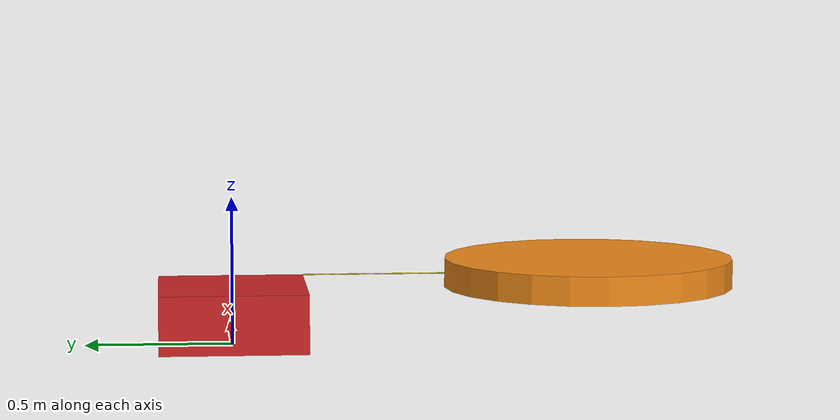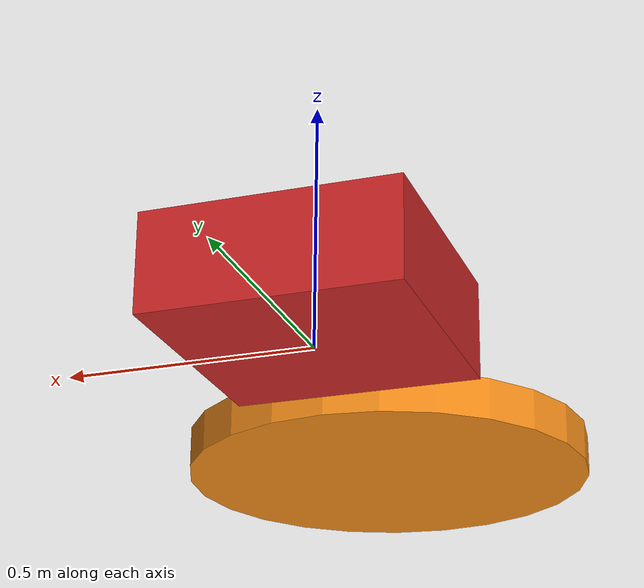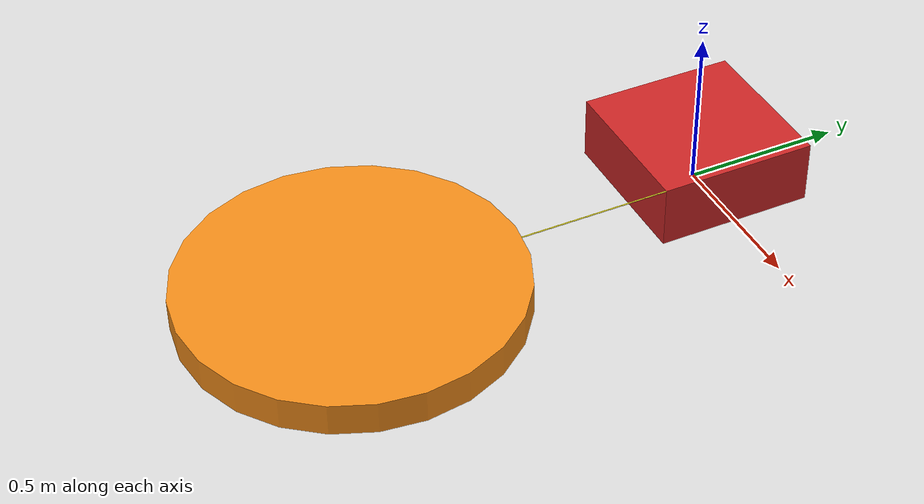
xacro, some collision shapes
<?xml version="1.0"?>
<robot name="dega_tethered"
    xmlns:xacro="http://ros.org/wiki/xacro">
    <!-- Properties -->
    <xacro:arg name="vehicle_name" default="dega_base"/>
    <xacro:arg name="color" default="White"/>

    <xacro:property name="namespace" value="$(arg vehicle_name)"/>
    <xacro:property name="use_mesh_file" value="true"/>
    <xacro:property name="mesh_file" value="model://qrotor_gazebo/meshes/dega.dae"/>

    <!-- load dimensions -->
    <xacro:property name="load_mass" value="2"/>
    <xacro:property name="load_length" value="0.5"/>
    <xacro:property name="load_width" value="0.5"/>
    <xacro:property name="load_height" value="0.2"/>
    <xacro:property name="cable_length" value="1"/>
    <xacro:property name="cable_radius" value="0.002"/>

    <xacro:property name="PI" value="3.1415926535897931"/>
    <xacro:property name="mass" value="0.9"/>
    <xacro:property name="body_width" value="0.505"/>
    <xacro:property name="body_height" value="0.1"/>
    <xacro:property name="body_inertia">
        <inertia ixx="0.0049" ixy="0.0000055" ixz="0.0000054" iyy="0.0053" iyz="0.000021" izz="0.0098"/>
    </xacro:property>
    <xacro:property name="color" value="$(arg color)"/>
    <!-- Size of square 'camera' box -->
    <xacro:property name="camera_length" value="0.01"/>
    <xacro:property name="camera_width" value="0.05"/>
    <xacro:property name="camera_height" value="0.015"/>
    <!-- Space btw top of beam and the each joint -->
    <xacro:property name="camera_offset" value="0.035"/>

    <!-- Qrotorflight SIL Plugin -->
    <xacro:include filename="$(find qrotor_gazebo)/xacro/qrotor_gazebo.xacro"/>

    <!-- Macro to add a spherical_joint_plugin. -->
    <xacro:macro name="spherical_joint_plugin" params="parent_link child_link">
        <gazebo>
            <plugin filename="libspherical_joint_plugin.so" name="spherical_joint_plugin">
                <parent_link>${parent_link}</parent_link>
                <child_link>${child_link}</child_link>
            </plugin>
        </gazebo>
    </xacro:macro>
    <xacro:macro name="spherical_joint" params="parent_link child_link xyz rpy">
        <joint name="dummy_${parent_link}_${child_link}_joint" type="floating">
            <origin xyz="${xyz}" rpy="${rpy}"/>
            <parent link="${parent_link}"/>
            <child link="${child_link}"/>
        </joint>
        <xacro:spherical_joint_plugin parent_link="${parent_link}" child_link="${child_link}"/>
    </xacro:macro>

    <!-- Used for fixing robot to Gazebo 'base_link' -->
    <link name="world"/>

    <joint name="payload_fixed" type="fixed">
        <parent link="world"/>
        <child link="payload_link"/>
    </joint>

    <link name="payload_link">
        <collision>
            <origin xyz="0 0 ${load_height/2}" rpy="0 0 0"/>
            <geometry>
                <box size="${load_length} ${load_width} ${load_height}"/>
            </geometry>
            <surface>
                <bounce restitution_coefficient="0"/>
            </surface>
        </collision>
        <visual>
            <origin xyz="0 0 ${load_height/2}" rpy="0 0 ${-PI/2}"/>
            <geometry>
                <mesh filename="file:///$(find qrotor_description)/meshes/arcuo.dae" scale="${load_length*0.5} ${load_width*0.5} ${load_height*0.5}"/>
            </geometry>
            <material name="red"/>
        </visual>
        <inertial>
            <origin xyz="0 0 ${load_height/2}" rpy="0 0 0"/>
            <mass value="${load_mass}"/>
            <inertia ixx="0.1" ixy="0.0" ixz="0.0" iyy="0.1" iyz="0.0" izz="0.4"/>
        </inertial>
    </link>
    <xacro:rigidbody_plugin namespace="payload" parent_link="payload_link"/>

    <link name="cable_link">
        <visual>
            <origin xyz="0 0 ${cable_length/2}" rpy="0 0 0"/>
            <geometry>
                <cylinder length="${cable_length}" radius="${cable_radius}"/>
            </geometry>
        </visual>
        <inertial>
            <origin xyz="0 0 ${cable_length/2}" rpy="0 0 0"/>
            <mass value="0.0001"/>
            <inertia ixx="0.0001" ixy="0.0" ixz="0.0" iyy="0.0001" iyz="0.0" izz="0.0004"/>
        </inertial>
    </link>
    <gazebo reference="cable_link">
        <material>Gazebo/Yellow</material>
        <self_collide>0</self_collide>
        <mu1>1</mu1>
        <mu2>1</mu2>
        <maxVel>0.0</maxVel>
        <minDepth>0.001</minDepth>
    </gazebo>
    <xacro:spherical_joint parent_link="payload_link" child_link="cable_link" xyz="${load_length/2} -${load_width/2} ${load_height}" rpy="${PI/2} 0 0"/>

    <!-- gazebo robot description -->
    <link name="${namespace}/base_link">
        <inertial>
            <mass value="${mass}"/>
            <!-- [kg] -->
            <origin xyz="0 0 0"/>
            <xacro:insert_block name="body_inertia"/>
        </inertial>
        <visual>
            <origin xyz="0 0 0" rpy="0 0 ${-PI/2}"/>
            <geometry>
                <mesh filename="package://qrotor_description/meshes/dega.dae" scale="0.001 0.001 0.001"/>
            </geometry>
            <material name="orange"/>
        </visual>
        <collision>
            <origin xyz="0 0 0" rpy="0 0 0"/>
            <geometry>
                <cylinder length="${body_height}" radius="${body_width}"/>
            </geometry>
        </collision>
    </link>
    <gazebo reference="${namespace}/base_link">
        <material>Gazebo/${color}</material>
    </gazebo>
    <xacro:generic_multirotor namespace="${namespace}" parent_link="${namespace}/base_link"/>

    <!-- Camera joint (fixed to the drone-frame) -->
    <joint name="${namespace}/camera_joint" type="fixed">
        <origin xyz="${-camera_length} 0 ${-camera_offset}" rpy="0 ${PI/4} ${PI/2}"/>
        <parent link="${namespace}/base_link"/>
        <child link="${namespace}/camera_link"/>
    </joint>

    <joint name="${namespace}/camera_optical_joint" type="fixed">
        <origin xyz="0 0 0" rpy="${-pi/2} 0 ${-pi/2}"/>
        <parent link="${namespace}/camera_link"/>
        <child link="${namespace}/camera_link_optical"/>
    </joint>

    <link name="${namespace}/camera_link_optical">
        <inertial>
            <mass value="1e-5"/>
            <origin xyz="0 0 0" rpy="0 0 0"/>
            <inertia ixx="1e-6" ixy="0" ixz="0" iyy="1e-6" iyz="0" izz="1e-6"/>
        </inertial>
    </link>

    <!-- Camera -->
    <link name="${namespace}/camera_link">
        <collision>
            <origin xyz="0 0 0" rpy="0 0 0"/>
            <geometry>
                <box size="${camera_length} ${camera_width} ${camera_height}"/>
            </geometry>
        </collision>
        <visual>
            <origin xyz="0 0 0" rpy="0 0 0"/>
            <geometry>
                <box size="${camera_length} ${camera_width} ${camera_height}"/>
            </geometry>
            <material name="red"/>
        </visual>
        <inertial>
            <mass value="1e-5"/>
            <origin xyz="0 0 0" rpy="0 0 0"/>
            <inertia ixx="1e-6" ixy="0" ixz="0" iyy="1e-6" iyz="0" izz="1e-6"/>
        </inertial>
    </link>
    <gazebo reference="${namespace}/camera_link">
        <material>Gazebo/Red</material>
        <sensor type="camera" name="color_camera">
            <update_rate>30.0</update_rate>
            <camera name="head">
                <horizontal_fov>1.3962634</horizontal_fov>
                <image>
                    <width>800</width>
                    <height>800</height>
                    <format>R8G8B8</format>
                </image>
                <clip>
                    <near>0.02</near>
                    <far>300</far>
                </clip>
                <noise>
                    <type>gaussian</type>
                    <!-- Noise is sampled independently per pixel on each frame.
               That pixel's noise value is added to each of its color
               channels, which at that point lie in the range [0,1]. -->
                    <mean>0.0</mean>
                    <stddev>0.007</stddev>
                </noise>
            </camera>
            <plugin name="camera_controller" filename="libgazebo_ros_camera.so">
                <alwaysOn>true</alwaysOn>
                <updateRate>0.0</updateRate>
                <cameraName>camera</cameraName>
                <imageTopicName>image_raw</imageTopicName>
                <cameraInfoTopicName>camera_info</cameraInfoTopicName>
                <frameName>camera_link</frameName>
                <hackBaseline>0.07</hackBaseline>
                <distortionK1>0.0</distortionK1>
                <distortionK2>0.0</distortionK2>
                <distortionK3>0.0</distortionK3>
                <distortionT1>0.0</distortionT1>
                <distortionT2>0.0</distortionT2>
            </plugin>
        </sensor>
    </gazebo>
    <xacro:spherical_joint parent_link="cable_link" child_link="${namespace}/base_link" xyz="0 0 ${cable_length}" rpy="${-PI/2} 0 0"/>

</robot>
